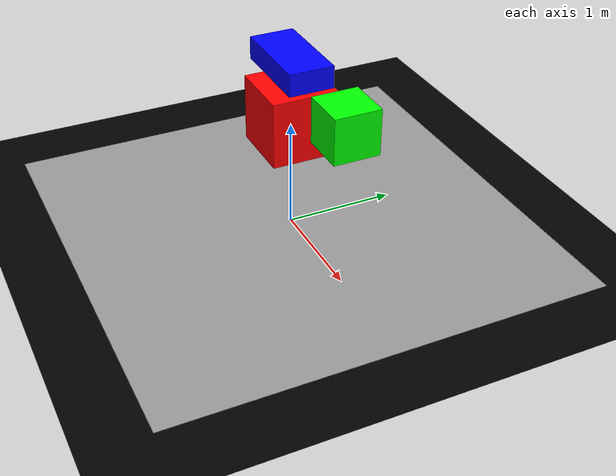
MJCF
<mujoco model="desktop">
    <compiler angle="radian" inertiafromgeom="true" />

    <default>
        <joint armature="1" damping="1" limited="true" />
        <geom contype="1" conaffinity='1' friction="1 0.5 0.5" rgba="0.6 0.6 0.6 1" />
        <motor ctrlrange='-1 1' ctrllimited='true'/>
    </default>

    <option gravity="0 0 -9.81" integrator="RK4" timestep="0.01" />

    <worldbody>
        <light pos="0 0 5" dir="0 0 -1" specular="1 1 1"/>

        <!-- Cage -->

        <geom name="floor" pos="0 0 0" size='10 10 10' type="plane" rgba="0 0 0 1"/>
        <geom name="bottom" pos="0 0 0" size="2 2 0.001" type="box"/>
        <geom name="top" pos="0 0 2" size="2 2 0.001" type="box" rgba="1 1 1 0"/>
        <geom name="right" pos="2 0 0" size="0.001 2 2" type="box" rgba="1 1 1 0"/>
        <geom name="left" pos="-2 0 0" size="0.001 2 2" type="box" rgba="1 1 1 0"/>
        <geom name="front" pos="0 -2 0" size="2 0.001 2" type="box" rgba="1 1 1 0"/>
        <geom name="back" pos="0 2 0" size="2 0.001 2" type="box" rgba="1 1 1 0"/>

        <!-- Target Objects -->

        <body name="obj1" pos="0 0 1.1">
            <geom type="box" size="0.3 0.3 0.3" rgba="1 0 0 1"/>
            <joint name="obj1_free" type="free" limited="false"/>
        </body>

        <body name="obj2" pos="1 0 1.5">
            <geom type="box" size="0.2 0.2 0.2" rgba="0 1 0 1"/>
            <joint name="obj2_free" type="free" limited="false"/>
        </body>

        <body name="obj3" pos="0 0 1.6">
            <geom type="box" size="0.4 0.2 0.1" rgba="0 0 1 1"/>
            <joint name="obj3_free" type="free" limited="false"/>
        </body>
    </worldbody>

</mujoco>
